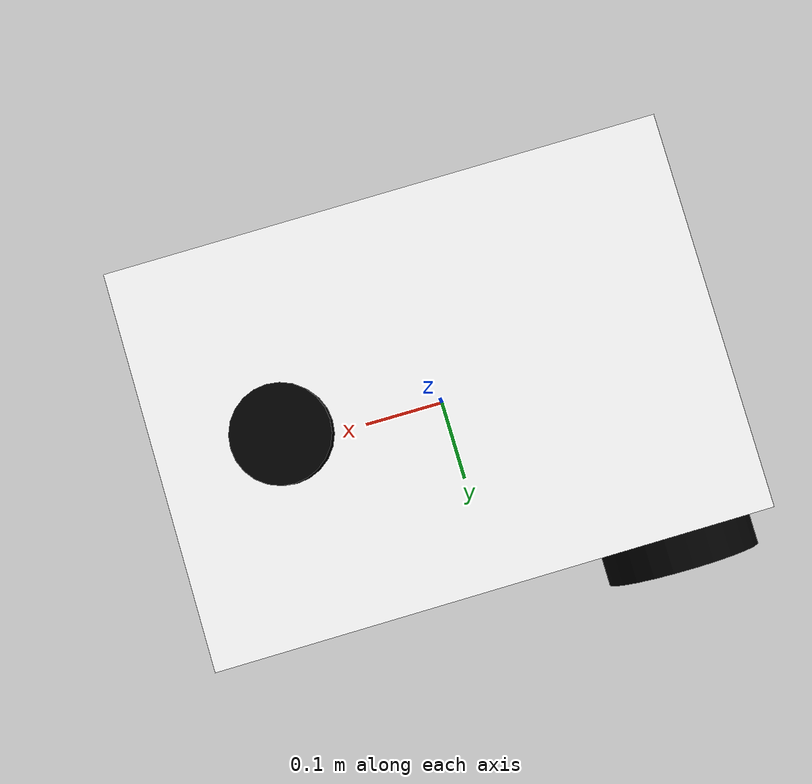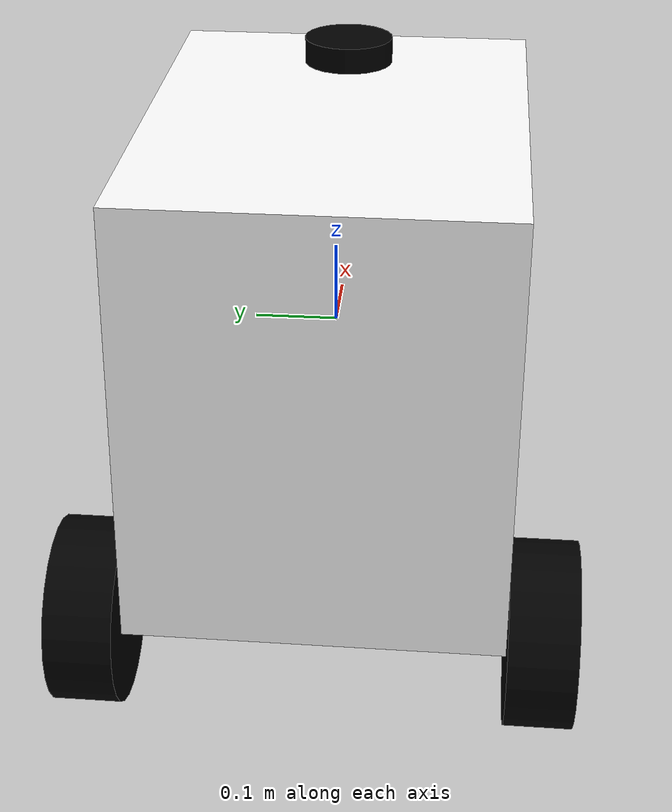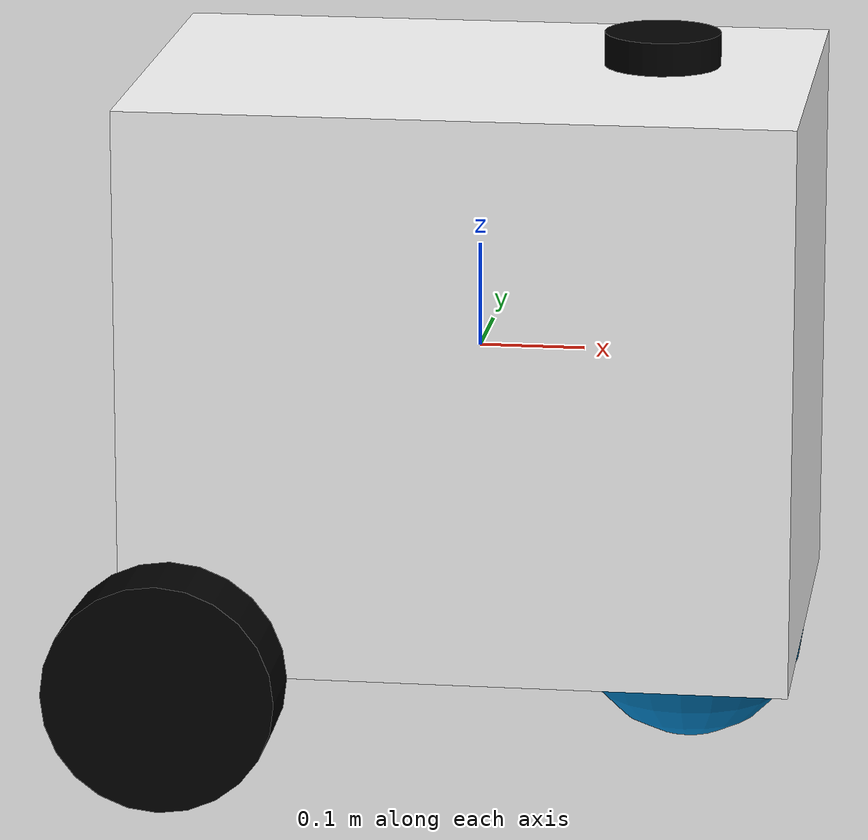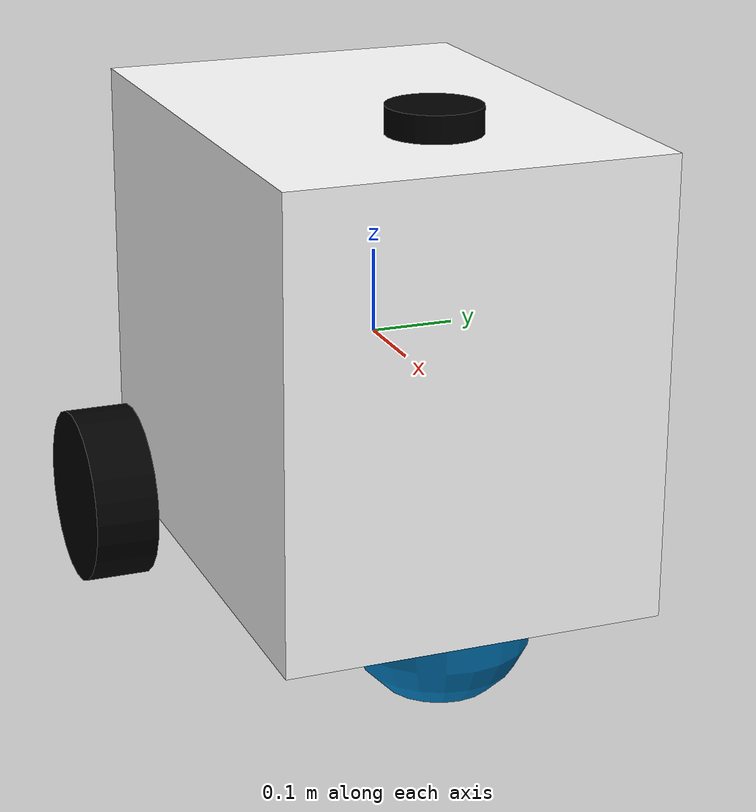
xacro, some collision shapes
<?xml version="1.0"?>
<robot xmlns:xacro="http://www.ros.org/wiki/xacro" name="delybot">

    <!-- BOX PROPERTIES -->
    <xacro:property name="box_width" value="0.45" />
    <xacro:property name="box_depth" value="0.63" />
    <xacro:property name="box_height" value="0.54" />
    <xacro:property name="box_mass" value="42" />

    <!-- WHEEL PROPERTIES -->
    <xacro:property name="wheel_radius" value="0.11" />
    <xacro:property name="wheel_width" value="0.08" />
    <xacro:property name="wheel_offset_from_bottom_chassis" value="0.0" />
    <xacro:property name="wheel_offset_from_front_chassis" value="0.05" />
    <xacro:property name="wheel_offset_from_back_chassis" value="0.05" />
    <xacro:property name="wheel_mass" value="0.5" />

    <!-- MACRO DEFINITION -->

    <!-- DEFAULT INERTIA MACRO -->
    <xacro:macro name="default_inertial" params="mass">
        <inertial>
            <mass value="${mass}" />
            <inertia ixx="1.0" ixy="0.0" ixz="0.0" iyy="1.0" iyz="0.0" izz="1.0" />
        </inertial>
    </xacro:macro>

    <xacro:macro name="box_inertial" params="x y z mass">
        <inertial>
            <mass value="${mass}" />
            <origin xyz="0 0 0" />
            <inertia ixx="${0.0833333 * mass * (y*y + z*z)}" ixy="0.0" ixz="0.0"
                    iyy="${0.0833333 * mass * (x*x + z*z)}" iyz="0.0"
                    izz="${0.0833333 * mass * (x*x + y*y)}" />
        </inertial>
    </xacro:macro>

    <xacro:macro name="cylinder_inertial" params="radius length mass">
        <inertial>
        <mass value="${mass}" />
        <origin xyz="0 0 0"/>
        <inertia ixx="${0.0833333 * mass * (3 * radius * radius + length * length)}" ixy="0.0" ixz="0.0"
                iyy="${0.0833333 * mass * (3 * radius * radius + length * length)}" iyz="0.0"
                izz="${0.5 * mass * radius * radius}" />
        </inertial>

    </xacro:macro>

    <!-- WHEEL MACRO -->
    <xacro:macro name="wheel_macro" params="position x y actuated:=false">
        <link name="${position}_wheel">
            <visual>
                <material name="black"/>
                <origin xyz="0.0 0.0 0.0" rpy="1.57075 0.0 0.0"/>
                <geometry>
                    <cylinder radius="${wheel_radius}" length="${wheel_width}"/>
                </geometry>
            </visual>
            <collision>
                <origin xyz="0.0 0.0 0.0" rpy="1.57075 0.0 0.0"/>
                <geometry>
                    <cylinder radius="${wheel_radius}" length="${wheel_width}"/>
                </geometry>
            </collision>
            <xacro:cylinder_inertial radius="${wheel_radius}" length="${wheel_width}" mass="${wheel_mass}"/>
        </link>

        <gazebo reference="${position}_wheel">
			<mu1 value="1.0"/>
			<mu2 value="1.0"/>
			<kp value="10000000.0" />
			<kd value="1.0" />
			<fdir1 value="1 0 0"/>
		</gazebo>

        <!-- JOINT DEFINITION -->

        <joint name="${position}_wheel_joint" type="continuous">
            <origin xyz="${x} ${y} -${box_height/2 - wheel_offset_from_bottom_chassis}" rpy="0.0 0.0 0.0"/>
            <parent link="base_box"/>
            <child link="${position}_wheel"/>
            <axis xyz="0.0 1.0 0.0"/>
        </joint>

        <gazebo reference="${position}_wheel">
            <material>Gazebo/FlatBlack</material>
        </gazebo>

        <!-- TRASMISSION DEFINITION -->

        <transmission name="${position}_wheel_joint_tran" type="SimpleTransmission">
            <type>transmission_interface/SimpleTransmission</type>
            <joint name="${position}_wheel_joint">
                <hardwareInterface>hardware_interface/VelocityJointInterface</hardwareInterface>
            </joint>
            <xacro:if value="true">
                <actuator name="${position}_wheel_joint_motor">
                    <hardwareInterface>hardware_interface/VelocityJointInterface</hardwareInterface>
                    <mechanicalReduction>1</mechanicalReduction>
                </actuator>
            </xacro:if>
        </transmission>

    </xacro:macro>

    <!-- MATERIAL DEFINITIONS -->

    <material name="black">
        <color rgba="0.0 0.0 0.0 1.0"/>
    </material>

    <material name="white">
        <color rgba="1.0 1.0 1.0 1.0"/>
    </material>

    <!-- BASE LINK -->

    <link name="base_link"/>

    <!-- BASE BOX -->

    <link name="base_box">
        <visual>
            <material name="white"/>
            <geometry>
                <box size="${box_depth} ${box_width} ${box_height}"/>
            </geometry>
        </visual>
        <collision>
            <geometry>
                <box size="${box_depth} ${box_width} ${box_height}"/>
            </geometry>
        </collision>
        <xacro:box_inertial x="${box_depth}" y="${box_width}" z="${box_height}" mass="${box_mass}"/>
    </link>

    <gazebo reference="base_box">
        <material>Gazebo/Orange</material>
    </gazebo>

    <!-- BOX - BASE JOINT -->

    <joint name="box_to_base_link_joint" type="fixed">
        <parent link="base_link"/>
        <child link="base_box"/>
    </joint>

    <!-- LEFT FRONT WHEEL -->

    <!-- LEFT CENTER WHEEL -->

    <!-- LEFT BACK WHEEL -->

    <xacro:wheel_macro position="left_back" x="${-box_depth/2 + wheel_offset_from_front_chassis}" y="${box_width/2 + wheel_width/2}" actuated="true"/>

    <!-- RIGHT FRONT WHEEL -->

    <!-- RIGHT CENTER WHEEL -->

    <!-- RIGHT BACK WHEEL -->

    <xacro:wheel_macro position="right_back" x="${-box_depth/2 + wheel_offset_from_front_chassis}" y="${-box_width/2 - wheel_width/2}" actuated="true"/>

    <link name="caster_wheel">
        <inertial>
            <origin xyz="0.0 0.0 0.0" rpy="0.0 0.0 0.0"/>
            <mass value="0.0"/>
            <inertia ixx="1.0" ixy="0.0" ixz="0.0" iyy="1.0" iyz="0.0" izz="1.0"/>
        </inertial>
        <visual>
            <origin xyz="0.0 0.0 0.0" rpy="0.0 0.0 0.0"/>
            <geometry>
                <sphere radius="${wheel_radius}"/>
            </geometry>
        </visual>
        <collision>
            <origin xyz="0.0 0.0 0.0" rpy="0.0 0.0 0.0"/>
            <geometry>
                <sphere radius="${wheel_radius}"/>
            </geometry>
        </collision>
         <surface>
        <friction>
          <ode>
            <mu1>0</mu1>
            <mu2>0</mu2>
            <slip1>1.0</slip1>
            <slip2>1.0</slip2>
          </ode>
        </friction>
      </surface>
    </link>

    <joint name="caster_wheel_joint" type="fixed">
        <origin xyz="${box_depth/2 - wheel_radius} 0.0 -${box_height/2 - wheel_offset_from_bottom_chassis}" rpy="0.0 0.0 0.0"/>
        <parent link="base_box"/>
        <child link="caster_wheel"/>
    </joint>

    <!-- LIDAR SENSOR -->

    <joint name="scan_joint" type="fixed">
        <parent link="base_link"/>
        <child link="base_scan"/>
        <origin xyz="${box_depth/4} 0 ${box_height/2 + 0.0315}" rpy="0 0 0"/>
    </joint>

    <link name="base_scan">
        <visual>
            <origin xyz="0 0 0" rpy="0 0 0"/>
                <geometry>
                    <mesh filename="package://delybot_description/sensors/lds.stl" scale="0.001 0.001 0.001"/>
                </geometry>
            <material name="black"/>
        </visual>

        <collision>
            <origin xyz="0.015 0 -0.0065" rpy="0 0 0"/>
            <geometry>
                <cylinder length="0.0315" radius="0.055"/>
            </geometry>
        </collision>

        <inertial>
            <mass value="0.114" />
            <origin xyz="0 0 0" />
            <inertia ixx="0.001" ixy="0.0" ixz="0.0"
                    iyy="0.001" iyz="0.0"
                    izz="0.001" />
        </inertial>
    </link>

    <gazebo reference="base_scan">
        <material>Gazebo/FlatBlack</material>
    </gazebo>

    <!-- IMU SENSOR -->

    <link name="imu_link"/>

    <joint name="imu_joint" type="fixed">
        <parent link="base_link"/>
        <child link="imu_link"/>
        <origin xyz="0.0 0 ${box_height/2}" rpy="0 0 0"/>
    </joint>

    <!-- GAZEBO PLUGIN -->

    <!-- ROS CONTROL PLUGIN -->

    <gazebo>
        <plugin name="gazebo_ros_control" filename="libgazebo_ros_control.so">
            <robotNamespace>/</robotNamespace>
        </plugin>
    </gazebo>

    <!-- LIDAR SENSOR PLUGIN -->

    <gazebo reference="base_scan">
        <material>Gazebo/FlatBlack</material>
        <sensor type="gpu_ray" name="lds_lfcd_sensor">
            <pose>0 0 0 0 0 0</pose>
            <visualize>true</visualize>
            <update_rate>5</update_rate>
            <ray>
                <scan>
                    <horizontal>
                        <samples>360</samples>
                        <resolution>1</resolution>
                        <min_angle>0.0</min_angle>
                        <max_angle>6.28319</max_angle>
                    </horizontal>
                </scan>
                <range>
                    <min>0.120</min>
                    <max>30</max>
                    <resolution>0.015</resolution>
                </range>
                <noise>
                    <type>gaussian</type>
                    <mean>0.0</mean>
                    <stddev>0.01</stddev>
                </noise>
            </ray>
            <plugin name="gazebo_ros_lds_lfcd_controller" filename="libgazebo_ros_gpu_laser.so">
                <topicName>scan</topicName>
                <frameName>base_scan</frameName>
            </plugin>
        </sensor>
    </gazebo>

    <!-- IMU PLUGIN -->

    <gazebo reference="imu_link">
        <sensor type="imu" name="imu">
            <always_on>true</always_on>
            <visualize>true</visualize>
        </sensor>
        <material>Gazebo/Grey</material>
    </gazebo>

    <gazebo>
    <plugin name="imu_plugin" filename="libgazebo_ros_imu.so">
        <alwaysOn>true</alwaysOn>
        <bodyName>imu_link</bodyName>
        <frameName>imu_link</frameName>
        <topicName>imu</topicName>
        <serviceName>imu_service</serviceName>
        <gaussianNoise>0.0</gaussianNoise>
        <updateRate>0</updateRate>
        <imu>
        <noise>
            <type>gaussian</type>
                <rate>
                    <mean>0.0</mean>
                    <stddev>2e-4</stddev>
                    <bias_mean>0.0000075</bias_mean>
                     <bias_stddev>0.0000008</bias_stddev>
                </rate>
                    <accel>
                       <mean>0.0</mean>
                        <stddev>1.7e-2</stddev>
                        <bias_mean>0.1</bias_mean>
                        <bias_stddev>0.001</bias_stddev>
                    </accel>
                </noise>
            </imu>
        </plugin>
    </gazebo>

</robot>
